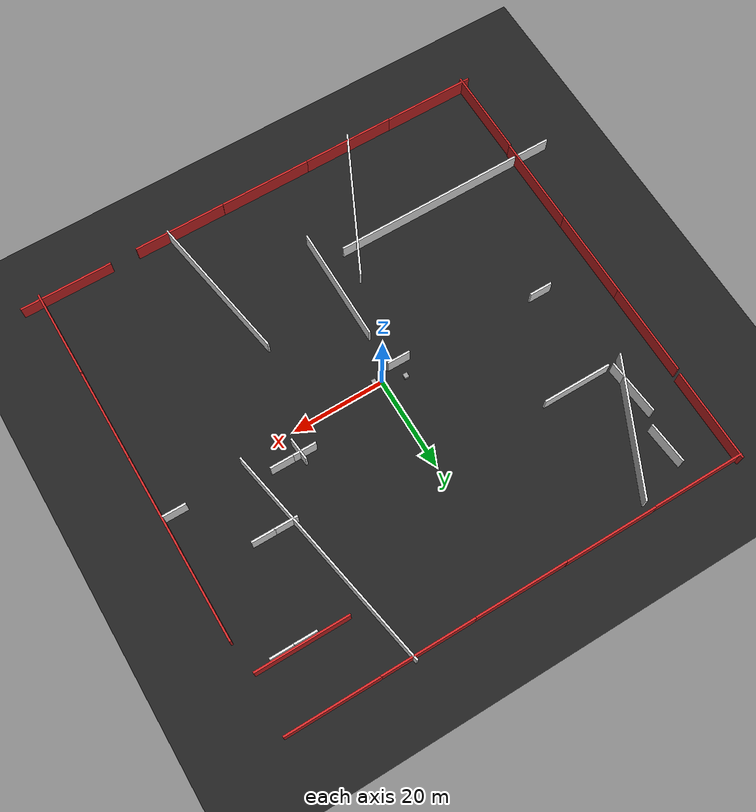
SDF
<sdf version="1.7">
 <world name="default">
  <light name="sun" type="directional">
   <pose>0 0 10 0 -0 0</pose>
   <diffuse>0.8 0.8 0.8 1</diffuse>
   <specular>0.1 0.1 0.1 1</specular>
   <attenuation>
    <range>1000</range>
    <constant>0.9</constant>
    <linear>0.01</linear>
    <quadratic>0.001</quadratic>
   </attenuation>
   <direction>-0.5 0.5 -1</direction>
   <spot><inner_angle>0</inner_angle><outer_angle>0</outer_angle><falloff>0</falloff></spot>
  </light>
  <model name="ground_plane">
   <static>1</static>
   <link name="link">
    <collision name="collision">
     <geometry><plane><normal>0 0 1</normal><size>1000 1000</size></plane></geometry>
     <surface><friction><ode><mu>100</mu><mu2>50</mu2></ode></friction></surface>
    </collision>
    <visual name="visual">
     <cast_shadows>0</cast_shadows>
     <geometry><plane><normal>0 0 1</normal><size>100 100</size></plane></geometry>
     <material>
      <script><uri>file://media/materials/scripts/gazebo.material</uri><name>Gazebo/Black</name></script>
     </material>
    </visual>
   </link>
  </model>
  <gravity>0 0 -9.8</gravity>
  <magnetic_field>6e-06 2.3e-05 -4.2e-05</magnetic_field>
  <atmosphere type="adiabatic"/>
  <physics name="default_physics" default="0" type="ode">
   <max_step_size>0.001</max_step_size>
   <real_time_factor>1</real_time_factor>
   <real_time_update_rate>1000</real_time_update_rate>
  </physics>
  <scene><ambient>0.4 0.4 0.4 1</ambient><background>0.7 0.7 0.7 1</background><shadows>1</shadows></scene>
  <spherical_coordinates>
   <surface_model>EARTH_WGS84</surface_model>
   <latitude_deg>0</latitude_deg>
   <longitude_deg>0</longitude_deg>
   <elevation>0</elevation>
   <heading_deg>0</heading_deg>
  </spherical_coordinates>
  <model name="grey_wall">
   <static>1</static>
   <link name="link">
    <pose>0 0 1.4 0 -0 0</pose>
    <collision name="collision"><geometry><box><size>20 0.4 4</size></box></geometry></collision>
    <visual name="visual">
     <cast_shadows>0</cast_shadows>
     <geometry><box><size>20 0.4 4</size></box></geometry>
     <material>
      <script>
       <uri>model://grey_wall/materials/scripts</uri>
       <uri>model://grey_wall/materials/textures</uri>
       <name>Gazebo/Red</name>
      </script>
     </material>
    </visual>
   </link>
   <pose>44.3132 -49.3431 0 0 -0 0</pose>
  </model>
  <model name="grey_wall_clone">
   <static>1</static>
   <link name="link">
    <pose>0 0 1.4 0 -0 0</pose>
    <collision name="collision"><geometry><box><size>20 0.4 4</size></box></geometry></collision>
    <visual name="visual">
     <cast_shadows>0</cast_shadows>
     <geometry><box><size>20 0.4 4</size></box></geometry>
     <material>
      <script>
       <uri>model://grey_wall/materials/scripts</uri>
       <uri>model://grey_wall/materials/textures</uri>
       <name>Gazebo/Red</name>
      </script>
     </material>
    </visual>
   </link>
   <pose>18.5676 -49.1768 0.7 0 -0 0</pose>
  </model>
  <model name="grey_wall_clone_clone">
   <static>1</static>
   <link name="link">
    <pose>0 0 1.4 0 -0 0</pose>
    <collision name="collision"><geometry><box><size>20 0.4 4</size></box></geometry></collision>
    <visual name="visual">
     <cast_shadows>0</cast_shadows>
     <geometry><box><size>20 0.4 4</size></box></geometry>
     <material>
      <script>
       <uri>model://grey_wall/materials/scripts</uri>
       <uri>model://grey_wall/materials/textures</uri>
       <name>Gazebo/Red</name>
      </script>
     </material>
    </visual>
   </link>
   <pose>-1.34559 -49.1467 0.7 0 -0 0</pose>
  </model>
  <model name="grey_wall_clone_clone_0">
   <static>1</static>
   <link name="link">
    <pose>0 0 1.4 0 -0 0</pose>
    <collision name="collision"><geometry><box><size>20 0.4 4</size></box></geometry></collision>
    <visual name="visual">
     <cast_shadows>0</cast_shadows>
     <geometry><box><size>20 0.4 4</size></box></geometry>
     <material>
      <script>
       <uri>model://grey_wall/materials/scripts</uri>
       <uri>model://grey_wall/materials/textures</uri>
       <name>Gazebo/Red</name>
      </script>
     </material>
    </visual>
   </link>
   <pose>-21.3501 -49.1617 0.7 0 -0 0</pose>
  </model>
  <model name="grey_wall_clone_clone_1">
   <static>1</static>
   <link name="link">
    <pose>0 0 1.4 0 -0 0</pose>
    <collision name="collision"><geometry><box><size>20 0.4 4</size></box></geometry></collision>
    <visual name="visual">
     <cast_shadows>0</cast_shadows>
     <geometry><box><size>20 0.4 4</size></box></geometry>
     <material>
      <script>
       <uri>model://grey_wall/materials/scripts</uri>
       <uri>model://grey_wall/materials/textures</uri>
       <name>Gazebo/Red</name>
      </script>
     </material>
    </visual>
   </link>
   <pose>-41.3472 -49.1157 0.7 0 -0 0</pose>
  </model>
  <model name="grey_wall_clone_clone_1_clone">
   <static>1</static>
   <link name="link">
    <pose>0 0 1.4 0 -0 0</pose>
    <collision name="collision"><geometry><box><size>20 0.4 4</size></box></geometry></collision>
    <visual name="visual">
     <cast_shadows>0</cast_shadows>
     <geometry><box><size>20 0.4 4</size></box></geometry>
     <material>
      <script>
       <uri>model://grey_wall/materials/scripts</uri>
       <uri>model://grey_wall/materials/textures</uri>
       <name>Gazebo/Red</name>
      </script>
     </material>
    </visual>
   </link>
   <pose>-40.0348 48.6038 0.7 0 -0 0</pose>
  </model>
  <model name="grey_wall_clone_clone_0_clone">
   <static>1</static>
   <link name="link">
    <pose>0 0 1.4 0 -0 0</pose>
    <collision name="collision"><geometry><box><size>20 0.4 4</size></box></geometry></collision>
    <visual name="visual">
     <cast_shadows>0</cast_shadows>
     <geometry><box><size>20 0.4 4</size></box></geometry>
     <material>
      <script>
       <uri>model://grey_wall/materials/scripts</uri>
       <uri>model://grey_wall/materials/textures</uri>
       <name>Gazebo/Red</name>
      </script>
     </material>
    </visual>
   </link>
   <pose>-20.0603 48.6696 0.7 0 -0 0</pose>
  </model>
  <model name="grey_wall_clone_clone_clone">
   <static>1</static>
   <link name="link">
    <pose>0 0 1.4 0 -0 0</pose>
    <collision name="collision"><geometry><box><size>20 0.4 4</size></box></geometry></collision>
    <visual name="visual">
     <cast_shadows>0</cast_shadows>
     <geometry><box><size>20 0.4 4</size></box></geometry>
     <material>
      <script>
       <uri>model://grey_wall/materials/scripts</uri>
       <uri>model://grey_wall/materials/textures</uri>
       <name>Gazebo/Red</name>
      </script>
     </material>
    </visual>
   </link>
   <pose>-0.173182 48.6192 0.7 0 -0 0</pose>
  </model>
  <model name="grey_wall_clone_clone_2">
   <static>1</static>
   <link name="link">
    <pose>0 0 1.4 0 -0 0</pose>
    <collision name="collision"><geometry><box><size>20 0.4 4</size></box></geometry></collision>
    <visual name="visual">
     <cast_shadows>0</cast_shadows>
     <geometry><box><size>20 0.4 4</size></box></geometry>
     <material>
      <script>
       <uri>model://grey_wall/materials/scripts</uri>
       <uri>model://grey_wall/materials/textures</uri>
       <name>Gazebo/Red</name>
      </script>
     </material>
    </visual>
   </link>
   <pose>19.7666 48.6351 0.7 0 -0 0</pose>
  </model>
  <model name="grey_wall_clone_0">
   <static>1</static>
   <link name="link">
    <pose>0 0 1.4 0 -0 0</pose>
    <collision name="collision"><geometry><box><size>20 0.4 4</size></box></geometry></collision>
    <visual name="visual">
     <cast_shadows>0</cast_shadows>
     <geometry><box><size>20 0.4 4</size></box></geometry>
     <material>
      <script>
       <uri>model://grey_wall/materials/scripts</uri>
       <uri>model://grey_wall/materials/textures</uri>
       <name>Gazebo/Red</name>
      </script>
     </material>
    </visual>
   </link>
   <pose>39.6101 48.6745 0.7 0 -0 0</pose>
  </model>
  <model name="grey_wall_clone_0_clone">
   <static>1</static>
   <link name="link">
    <pose>0 0 1.4 0 -0 0</pose>
    <collision name="collision"><geometry><box><size>20 0.4 4</size></box></geometry></collision>
    <visual name="visual">
     <cast_shadows>0</cast_shadows>
     <geometry><box><size>20 0.4 4</size></box></geometry>
     <material>
      <script>
       <uri>model://grey_wall/materials/scripts</uri>
       <uri>model://grey_wall/materials/textures</uri>
       <name>Gazebo/Red</name>
      </script>
     </material>
    </visual>
   </link>
   <pose>38.7673 36.5042 0.7 0 -0 0</pose>
  </model>
  <model name="grey_wall_clone_0_clone_clone">
   <static>1</static>
   <link name="link">
    <pose>0 0 1.4 0 -0 0</pose>
    <collision name="collision"><geometry><box><size>20 0.4 4</size></box></geometry></collision>
    <visual name="visual">
     <cast_shadows>0</cast_shadows>
     <geometry><box><size>20 0.4 4</size></box></geometry>
     <material>
      <script>
       <uri>model://grey_wall/materials/scripts</uri>
       <uri>model://grey_wall/materials/textures</uri>
       <name>Gazebo/Red</name>
      </script>
     </material>
    </visual>
   </link>
   <pose>49.6762 19.6308 0.7 0 -0 1.57482</pose>
  </model>
  <model name="grey_wall_clone_0_clone_clone_0">
   <static>1</static>
   <link name="link">
    <pose>0 0 1.4 0 -0 0</pose>
    <collision name="collision"><geometry><box><size>20 0.4 4</size></box></geometry></collision>
    <visual name="visual">
     <cast_shadows>0</cast_shadows>
     <geometry><box><size>20 0.4 4</size></box></geometry>
     <material>
      <script>
       <uri>model://grey_wall/materials/scripts</uri>
       <uri>model://grey_wall/materials/textures</uri>
       <name>Gazebo/Red</name>
      </script>
     </material>
    </visual>
   </link>
   <pose>49.727 -0.354519 0.7 0 -0 1.57482</pose>
  </model>
  <model name="grey_wall_clone_0_clone_clone_1">
   <static>1</static>
   <link name="link">
    <pose>0 0 1.4 0 -0 0</pose>
    <collision name="collision"><geometry><box><size>20 0.4 4</size></box></geometry></collision>
    <visual name="visual">
     <cast_shadows>0</cast_shadows>
     <geometry><box><size>20 0.4 4</size></box></geometry>
     <material>
      <script>
       <uri>model://grey_wall/materials/scripts</uri>
       <uri>model://grey_wall/materials/textures</uri>
       <name>Gazebo/Red</name>
      </script>
     </material>
    </visual>
   </link>
   <pose>49.7933 -20.3785 0.7 0 -0 1.57482</pose>
  </model>
  <model name="grey_wall_clone_0_clone_clone_2">
   <static>1</static>
   <link name="link">
    <pose>0 0 1.4 0 -0 0</pose>
    <collision name="collision"><geometry><box><size>19.4 0.4 4</size></box></geometry></collision>
    <visual name="visual">
     <cast_shadows>0</cast_shadows>
     <geometry><box><size>19.4 0.4 4</size></box></geometry>
     <material>
      <script>
       <uri>model://grey_wall/materials/scripts</uri>
       <uri>model://grey_wall/materials/textures</uri>
       <name>Gazebo/Red</name>
      </script>
     </material>
    </visual>
   </link>
   <pose>49.8389 -40.3539 0.7 0 -0 1.57482</pose>
  </model>
  <model name="grey_wall_clone_0_clone_clone_2_clone">
   <static>1</static>
   <link name="link">
    <pose>0 0 1.4 0 -0 0</pose>
    <collision name="collision"><geometry><box><size>19.4 0.4 4</size></box></geometry></collision>
    <visual name="visual">
     <cast_shadows>0</cast_shadows>
     <geometry><box><size>19.4 0.4 4</size></box></geometry>
     <material>
      <script>
       <uri>model://grey_wall/materials/scripts</uri>
       <uri>model://grey_wall/materials/textures</uri>
       <name>Gazebo/Red</name>
      </script>
     </material>
    </visual>
   </link>
   <pose>-49.9119 -40.2748 0.7 0 -0 1.57482</pose>
  </model>
  <model name="grey_wall_clone_0_clone_clone_3">
   <static>1</static>
   <link name="link">
    <pose>0 0 1.4 0 -0 0</pose>
    <collision name="collision"><geometry><box><size>20 0.4 4</size></box></geometry></collision>
    <visual name="visual">
     <cast_shadows>0</cast_shadows>
     <geometry><box><size>20 0.4 4</size></box></geometry>
     <material>
      <script>
       <uri>model://grey_wall/materials/scripts</uri>
       <uri>model://grey_wall/materials/textures</uri>
       <name>Gazebo/Red</name>
      </script>
     </material>
    </visual>
   </link>
   <pose>-49.7894 -20.5245 0.7 0 -0 1.57482</pose>
  </model>
  <model name="grey_wall_clone_0_clone_clone_4">
   <static>1</static>
   <link name="link">
    <pose>0 0 1.4 0 -0 0</pose>
    <collision name="collision"><geometry><box><size>20 0.4 4</size></box></geometry></collision>
    <visual name="visual">
     <cast_shadows>0</cast_shadows>
     <geometry><box><size>20 0.4 4</size></box></geometry>
     <material>
      <script>
       <uri>model://grey_wall/materials/scripts</uri>
       <uri>model://grey_wall/materials/textures</uri>
       <name>Gazebo/Red</name>
      </script>
     </material>
    </visual>
   </link>
   <pose>-49.8785 -0.87522 0.7 0 -0 1.57482</pose>
  </model>
  <model name="grey_wall_clone_0_clone_clone_5">
   <static>1</static>
   <link name="link">
    <pose>0 0 1.4 0 -0 0</pose>
    <collision name="collision"><geometry><box><size>20 0.4 4</size></box></geometry></collision>
    <visual name="visual">
     <cast_shadows>0</cast_shadows>
     <geometry><box><size>20 0.4 4</size></box></geometry>
     <material>
      <script>
       <uri>model://grey_wall/materials/scripts</uri>
       <uri>model://grey_wall/materials/textures</uri>
       <name>Gazebo/Red</name>
      </script>
     </material>
    </visual>
   </link>
   <pose>-49.9538 18.5774 0.7 0 -0 1.57482</pose>
  </model>
  <model name="grey_wall_clone_0_clone_clone_6">
   <static>1</static>
   <link name="link">
    <pose>0 0 1.4 0 -0 0</pose>
    <collision name="collision"><geometry><box><size>20 0.4 4</size></box></geometry></collision>
    <visual name="visual">
     <cast_shadows>0</cast_shadows>
     <geometry><box><size>20 0.4 4</size></box></geometry>
     <material>
      <script>
       <uri>model://grey_wall/materials/scripts</uri>
       <uri>model://grey_wall/materials/textures</uri>
       <name>Gazebo/Red</name>
      </script>
     </material>
    </visual>
   </link>
   <pose>-49.7102 39.4577 0.7 0 -0 1.57482</pose>
  </model>
  <model name="grey_wall_0">
   <static>1</static>
   <link name="link">
    <pose>0 0 1.4 0 -0 0</pose>
    <collision name="collision"><geometry><box><size>50 0.4 4</size></box></geometry></collision>
    <visual name="visual">
     <cast_shadows>0</cast_shadows>
     <geometry><box><size>50 0.4 4</size></box></geometry>
     <material>
      <script>
       <uri>model://grey_wall/materials/scripts</uri>
       <uri>model://grey_wall/materials/textures</uri>
       <name>Gazebo/White</name>
      </script>
     </material>
    </visual>
   </link>
   <pose>-32.594 -28.0272 0 0 -0 0</pose>
  </model>
  <model name="grey_wall_1">
   <static>1</static>
   <link name="link">
    <pose>0 0 1.4 0 -0 0</pose>
    <collision name="collision"><geometry><box><size>5 0.4 4</size></box></geometry></collision>
    <visual name="visual">
     <cast_shadows>0</cast_shadows>
     <geometry><box><size>5 0.4 4</size></box></geometry>
     <material>
      <script>
       <uri>model://grey_wall/materials/scripts</uri>
       <uri>model://grey_wall/materials/textures</uri>
       <name>Gazebo/White</name>
      </script>
     </material>
    </visual>
   </link>
   <pose>-37.0632 0.212457 0 0 -0 0</pose>
  </model>
  <model name="grey_wall_2_clone">
   <static>1</static>
   <link name="link">
    <pose>0 0 1.4 0 -0 0</pose>
    <collision name="collision"><geometry><box><size>30 0.4 4</size></box></geometry></collision>
    <visual name="visual">
     <cast_shadows>0</cast_shadows>
     <geometry><box><size>30 0.4 4</size></box></geometry>
     <material>
      <script>
       <uri>model://grey_wall/materials/scripts</uri>
       <uri>model://grey_wall/materials/textures</uri>
       <name>Gazebo/White</name>
      </script>
     </material>
    </visual>
   </link>
   <pose>-35.7548 33.4418 0.7 0 0 -2.02397</pose>
  </model>
  <model name="grey_wall_2">
   <static>1</static>
   <link name="link">
    <pose>0 0 1.4 0 -0 0</pose>
    <collision name="collision"><geometry><box><size>15 0.4 4</size></box></geometry></collision>
    <visual name="visual">
     <cast_shadows>0</cast_shadows>
     <geometry><box><size>15 0.4 4</size></box></geometry>
     <material>
      <script>
       <uri>model://grey_wall/materials/scripts</uri>
       <uri>model://grey_wall/materials/textures</uri>
       <name>Gazebo/White</name>
      </script>
     </material>
    </visual>
   </link>
   <pose>-31.8066 20.6576 0 0 -0 0</pose>
  </model>
  <model name="grey_wall_1_clone_clone">
   <static>1</static>
   <link name="link">
    <pose>0 0 1.4 0 -0 0</pose>
    <collision name="collision"><geometry><box><size>9 0.4 4</size></box></geometry></collision>
    <visual name="visual">
     <cast_shadows>0</cast_shadows>
     <geometry><box><size>9 0.4 4</size></box></geometry>
     <material>
      <script>
       <uri>model://grey_wall/materials/scripts</uri>
       <uri>model://grey_wall/materials/textures</uri>
       <name>Gazebo/White</name>
      </script>
     </material>
    </visual>
   </link>
   <pose>-39.3725 39.6893 0.7 0 0 -1.48449</pose>
  </model>
  <model name="grey_wall_1_clone">
   <static>1</static>
   <link name="link">
    <pose>0 0 1.4 0 -0 0</pose>
    <collision name="collision"><geometry><box><size>12 0.4 4</size></box></geometry></collision>
    <visual name="visual">
     <cast_shadows>0</cast_shadows>
     <geometry><box><size>12 0.4 4</size></box></geometry>
     <material>
      <script>
       <uri>model://grey_wall/materials/scripts</uri>
       <uri>model://grey_wall/materials/textures</uri>
       <name>Gazebo/White</name>
      </script>
     </material>
    </visual>
   </link>
   <pose>-40.387 27.0701 0.7 0 0 -1.48449</pose>
  </model>
  <model name="grey_wall_2_clone_clone">
   <static>1</static>
   <link name="link">
    <pose>0 0 1.4 0 -0 0</pose>
    <collision name="collision"><geometry><box><size>33 0.4 4</size></box></geometry></collision>
    <visual name="visual">
     <cast_shadows>0</cast_shadows>
     <geometry><box><size>33 0.4 4</size></box></geometry>
     <material>
      <script>
       <uri>model://grey_wall/materials/scripts</uri>
       <uri>model://grey_wall/materials/textures</uri>
       <name>Gazebo/White</name>
      </script>
     </material>
    </visual>
   </link>
   <pose>-14.7381 -35.6617 0.7 0 0 -2.02397</pose>
  </model>
  <model name="grey_wall_0_clone_clone">
   <static>1</static>
   <link name="link">
    <pose>0 0 1.4 0 -0 0</pose>
    <collision name="collision"><geometry><box><size>50 0.4 4</size></box></geometry></collision>
    <visual name="visual">
     <cast_shadows>0</cast_shadows>
     <geometry><box><size>50 0.4 4</size></box></geometry>
     <material>
      <script>
       <uri>model://grey_wall/materials/scripts</uri>
       <uri>model://grey_wall/materials/textures</uri>
       <name>Gazebo/White</name>
      </script>
     </material>
    </visual>
   </link>
   <pose>27.1968 25.0249 0.7 0 -0 1.75069</pose>
  </model>
  <model name="grey_wall_2_clone_clone_clone">
   <static>1</static>
   <link name="link">
    <pose>0 0 1.4 0 -0 0</pose>
    <collision name="collision"><geometry><box><size>33 0.4 4</size></box></geometry></collision>
    <visual name="visual">
     <cast_shadows>0</cast_shadows>
     <geometry><box><size>33 0.4 4</size></box></geometry>
     <material>
      <script>
       <uri>model://grey_wall/materials/scripts</uri>
       <uri>model://grey_wall/materials/textures</uri>
       <name>Gazebo/White</name>
      </script>
     </material>
    </visual>
   </link>
   <pose>18.518 -33.4149 0.7 0 0 -1.40447</pose>
  </model>
  <model name="grey_wall_2_clone_clone_clone_0">
   <static>1</static>
   <link name="link">
    <pose>0 0 1.4 0 -0 0</pose>
    <collision name="collision"><geometry><box><size>25 0.4 4</size></box></geometry></collision>
    <visual name="visual">
     <cast_shadows>0</cast_shadows>
     <geometry><box><size>25 0.4 4</size></box></geometry>
     <material>
      <script>
       <uri>model://grey_wall/materials/scripts</uri>
       <uri>model://grey_wall/materials/textures</uri>
       <name>Gazebo/White</name>
      </script>
     </material>
    </visual>
   </link>
   <pose>-2.60355 -21.5138 0.7 0 0 -1.57264</pose>
  </model>
  <model name="grey_wall_1_clone_1">
   <static>1</static>
   <link name="link">
    <pose>0 0 1.4 0 -0 0</pose>
    <collision name="collision"><geometry><box><size>5 0.4 4</size></box></geometry></collision>
    <visual name="visual">
     <cast_shadows>0</cast_shadows>
     <geometry><box><size>5 0.4 4</size></box></geometry>
     <material>
      <script>
       <uri>model://grey_wall/materials/scripts</uri>
       <uri>model://grey_wall/materials/textures</uri>
       <name>Gazebo/White</name>
      </script>
     </material>
    </visual>
   </link>
   <pose>21.311 4.62577 0.7 0 0 -1.48449</pose>
  </model>
  <model name="grey_wall_1_clone_1_clone">
   <static>1</static>
   <link name="link">
    <pose>0 0 1.4 0 -0 0</pose>
    <collision name="collision"><geometry><box><size>5 0.4 4</size></box></geometry></collision>
    <visual name="visual">
     <cast_shadows>0</cast_shadows>
     <geometry><box><size>5 0.4 4</size></box></geometry>
     <material>
      <script>
       <uri>model://grey_wall/materials/scripts</uri>
       <uri>model://grey_wall/materials/textures</uri>
       <name>Gazebo/White</name>
      </script>
     </material>
    </visual>
   </link>
   <pose>47.0897 3.03281 0.7 0 0 -0.00371</pose>
  </model>
  <model name="grey_wall_1_clone_1_clone_0">
   <static>1</static>
   <link name="link">
    <pose>0 0 1.4 0 -0 0</pose>
    <collision name="collision"><geometry><box><size>5 0.4 4</size></box></geometry></collision>
    <visual name="visual">
     <cast_shadows>0</cast_shadows>
     <geometry><box><size>5 0.4 4</size></box></geometry>
     <material>
      <script>
       <uri>model://grey_wall/materials/scripts</uri>
       <uri>model://grey_wall/materials/textures</uri>
       <name>Gazebo/White</name>
      </script>
     </material>
    </visual>
   </link>
   <pose>20.3546 5.18242 0.7 0 0 -0.00371</pose>
  </model>
  <model name="grey_wall_1_clone_1_clone_1">
   <static>1</static>
   <link name="link">
    <pose>0 0 1.4 0 -0 0</pose>
    <collision name="collision"><geometry><box><size>5 0.4 4</size></box></geometry></collision>
    <visual name="visual">
     <cast_shadows>0</cast_shadows>
     <geometry><box><size>5 0.4 4</size></box></geometry>
     <material>
      <script>
       <uri>model://grey_wall/materials/scripts</uri>
       <uri>model://grey_wall/materials/textures</uri>
       <name>Gazebo/White</name>
      </script>
     </material>
    </visual>
   </link>
   <pose>25.3469 5.17491 0.7 0 0 -0.00371</pose>
  </model>
  <model name="grey_wall_1_clone_1_clone_2">
   <static>1</static>
   <link name="link">
    <pose>0 0 1.4 0 -0 0</pose>
    <collision name="collision"><geometry><box><size>5 0.4 4</size></box></geometry></collision>
    <visual name="visual">
     <cast_shadows>0</cast_shadows>
     <geometry><box><size>5 0.4 4</size></box></geometry>
     <material>
      <script>
       <uri>model://grey_wall/materials/scripts</uri>
       <uri>model://grey_wall/materials/textures</uri>
       <name>Gazebo/White</name>
      </script>
     </material>
    </visual>
   </link>
   <pose>30.401 15.8083 0.7 0 0 -0.00371</pose>
  </model>
  <model name="grey_wall_1_clone_1_clone_3">
   <static>1</static>
   <link name="link">
    <pose>0 0 1.4 0 -0 0</pose>
    <collision name="collision"><geometry><box><size>5 0.4 4</size></box></geometry></collision>
    <visual name="visual">
     <cast_shadows>0</cast_shadows>
     <geometry><box><size>5 0.4 4</size></box></geometry>
     <material>
      <script>
       <uri>model://grey_wall/materials/scripts</uri>
       <uri>model://grey_wall/materials/textures</uri>
       <name>Gazebo/White</name>
      </script>
     </material>
    </visual>
   </link>
   <pose>35.2535 15.7966 0.7 0 0 -0.00371</pose>
  </model>
  <model name="grey_wall_1_clone_1_clone_4">
   <static>1</static>
   <link name="link">
    <pose>0 0 1.4 0 -0 0</pose>
    <collision name="collision"><geometry><box><size>5 0.4 4</size></box></geometry></collision>
    <visual name="visual">
     <cast_shadows>0</cast_shadows>
     <geometry><box><size>5 0.4 4</size></box></geometry>
     <material>
      <script>
       <uri>model://grey_wall/materials/scripts</uri>
       <uri>model://grey_wall/materials/textures</uri>
       <name>Gazebo/White</name>
      </script>
     </material>
    </visual>
   </link>
   <pose>37.8082 35.9046 0.7 0 0 -0.00371</pose>
  </model>
  <model name="grey_wall_1_clone_1_clone_5">
   <static>1</static>
   <link name="link">
    <pose>0 0 1.4 0 -0 0</pose>
    <collision name="collision"><geometry><box><size>5 0.4 4</size></box></geometry></collision>
    <visual name="visual">
     <cast_shadows>0</cast_shadows>
     <geometry><box><size>5 0.4 4</size></box></geometry>
     <material>
      <script>
       <uri>model://grey_wall/materials/scripts</uri>
       <uri>model://grey_wall/materials/textures</uri>
       <name>Gazebo/White</name>
      </script>
     </material>
    </visual>
   </link>
   <pose>42.6574 35.9047 0.7 0 0 -0.00371</pose>
  </model>
  <model name="grey_wall_1_clone_1_clone_1_clone">
   <static>1</static>
   <link name="link">
    <pose>0 0 1.4 0 -0 0</pose>
    <collision name="collision"><geometry><box><size>5 0.4 4</size></box></geometry></collision>
    <visual name="visual">
     <cast_shadows>0</cast_shadows>
     <geometry><box><size>5 0.4 4</size></box></geometry>
     <material>
      <script>
       <uri>model://grey_wall/materials/scripts</uri>
       <uri>model://grey_wall/materials/textures</uri>
       <name>Gazebo/White</name>
      </script>
     </material>
    </visual>
   </link>
   <pose>-4.71302 -1.6028 0.7 0 0 -0.00371</pose>
  </model>
  <model name="small_box_heavy">
   <link name="link">
    <inertial>
     <mass>30</mass>
     <inertia><ixx>3.87149</ixx><ixy>0</ixy><ixz>0</ixz><iyy>3.87149</iyy><iyz>0</iyz><izz>5</izz></inertia>
    </inertial>
    <visual name="visual">
     <geometry><box><size>1 1 0.740673</size></box></geometry>
     <material>
      <script><name>Gazebo/Grey</name><uri>file://media/materials/scripts/gazebo.material</uri></script>
      <shader type="pixel"><normal_map>__default__</normal_map></shader>
     </material>
    </visual>
    <collision name="collision">
     <geometry><box><size>1 1 0.740673</size></box></geometry>
     <surface>
      <friction>
       <ode><mu>1</mu><mu2>1</mu2><fdir1>0 0 0</fdir1><slip1>0</slip1><slip2>0</slip2></ode>
       <torsional>
        <coefficient>1</coefficient>
        <patch_radius>0</patch_radius>
        <surface_radius>0</surface_radius>
        <use_patch_radius>1</use_patch_radius>
        <ode><slip>0</slip></ode>
       </torsional>
      </friction>
      <bounce><restitution_coefficient>0</restitution_coefficient><threshold>1e+06</threshold></bounce>
      <contact>
       <collide_without_contact>0</collide_without_contact>
       <collide_without_contact_bitmask>1</collide_without_contact_bitmask>
       <collide_bitmask>1</collide_bitmask>
       <ode>
        <soft_cfm>0</soft_cfm>
        <soft_erp>0.2</soft_erp>
        <kp>1e+13</kp>
        <kd>1</kd>
        <max_vel>0.01</max_vel>
        <min_depth>0</min_depth>
       </ode>
       <bullet>
        <split_impulse>1</split_impulse>
        <split_impulse_penetration_threshold>-0.01</split_impulse_penetration_threshold>
        <soft_cfm>0</soft_cfm>
        <soft_erp>0.2</soft_erp>
        <kp>1e+13</kp>
        <kd>1</kd>
       </bullet>
      </contact>
     </surface>
    </collision>
   </link>
   <static>0</static>
   <pose>1.37511 -0.815318 0.370332 0 -9e-06 -0.025043</pose>
  </model>
  <model name="small_box_heavy_clone">
   <link name="link">
    <inertial>
     <mass>30</mass>
     <inertia><ixx>3.87149</ixx><ixy>0</ixy><ixz>0</ixz><iyy>3.87149</iyy><iyz>0</iyz><izz>5</izz></inertia>
    </inertial>
    <visual name="visual">
     <geometry><box><size>1 1 0.740673</size></box></geometry>
     <material>
      <script><name>Gazebo/Grey</name><uri>file://media/materials/scripts/gazebo.material</uri></script>
      <shader type="pixel"><normal_map>__default__</normal_map></shader>
     </material>
    </visual>
    <collision name="collision">
     <geometry><box><size>1 1 0.740673</size></box></geometry>
     <surface>
      <friction>
       <ode><mu>1</mu><mu2>1</mu2><fdir1>0 0 0</fdir1><slip1>0</slip1><slip2>0</slip2></ode>
       <torsional>
        <coefficient>1</coefficient>
        <patch_radius>0</patch_radius>
        <surface_radius>0</surface_radius>
        <use_patch_radius>1</use_patch_radius>
        <ode><slip>0</slip></ode>
       </torsional>
      </friction>
      <bounce><restitution_coefficient>0</restitution_coefficient><threshold>1e+06</threshold></bounce>
      <contact>
       <collide_without_contact>0</collide_without_contact>
       <collide_without_contact_bitmask>1</collide_without_contact_bitmask>
       <collide_bitmask>1</collide_bitmask>
       <ode>
        <soft_cfm>0</soft_cfm>
        <soft_erp>0.2</soft_erp>
        <kp>1e+13</kp>
        <kd>1</kd>
        <max_vel>0.01</max_vel>
        <min_depth>0</min_depth>
       </ode>
       <bullet>
        <split_impulse>1</split_impulse>
        <split_impulse_penetration_threshold>-0.01</split_impulse_penetration_threshold>
        <soft_cfm>0</soft_cfm>
        <soft_erp>0.2</soft_erp>
        <kp>1e+13</kp>
        <kd>1</kd>
       </bullet>
      </contact>
     </surface>
    </collision>
   </link>
   <static>0</static>
   <pose>-4.69072 1.32013 0.370332 -9e-06 -0 -0.025043</pose>
  </model>
 </world>
</sdf>
